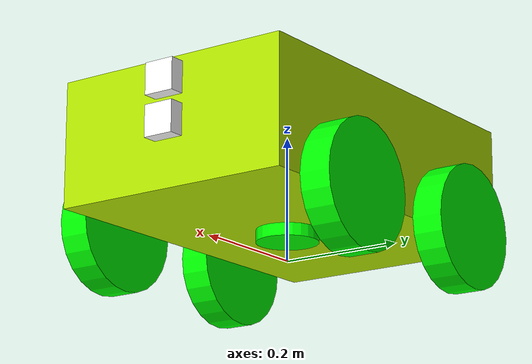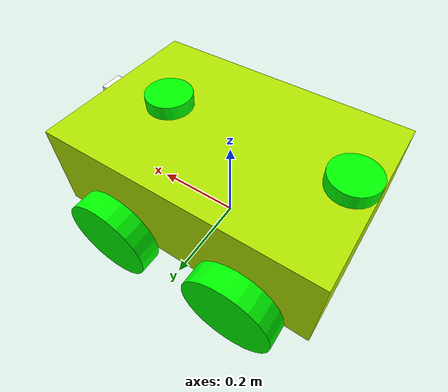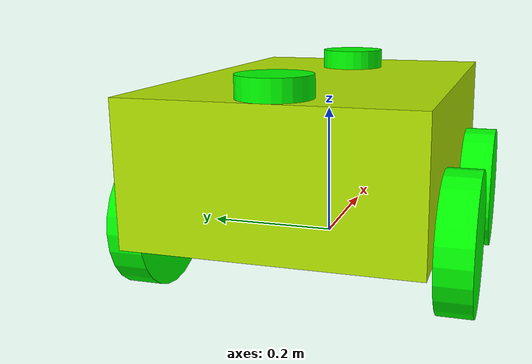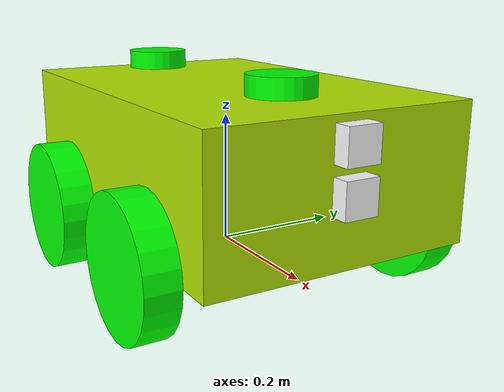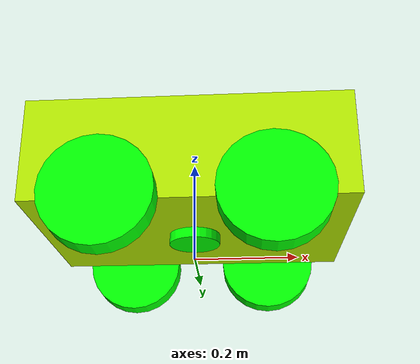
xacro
<?xml version = "1.0"?>
<robot xmlns:xacro="http://www.ros.org/wiki.xacro" name = "robot" >

<xacro:include filename="inertial.xacro"/>
<xacro:include filename="lidar.xacro"/>
<xacro:include filename="stereo.xacro"/>
<xacro:include filename="gps.xacro"/>
<xacro:include filename="imu.xacro"/>
<xacro:include filename="cam.xacro"/>

<xacro:property name="wheel_radius" value="0.1"/>
<xacro:property name="wheel_length" value="0.05"/>
<xacro:property name="wheel_mass" value="0.5"/>
<xacro:property name="damping" value="0.1"/>
<xacro:property name="friction" value="0.5"/>

    <material name = "grey">
        <color rgba = "0.7 0.7 0.7 1" />
    </material>

    <material name = "green">
        <color rgba = "0 0.6 0 1" />
    </material>

    <material name = "white">
        <color rgba = "1 1 1 1" />
    </material>

    <material name = "black">
        <color rgba = "0 0 0 1" />
    </material>

    <material name = "yellow">
        <color rgba = "0.7 0.9 0 1" />
    </material>
    <!-- Define base_footprint -->
    <link name="base_footprint">
        <inertial>
            <mass value="0.0"/>
            <origin xyz="0 0 0" rpy="0 0 0"/>
            <inertia ixx="0" ixy="0" ixz="0" iyy="0" iyz="0" izz="0"/>
        </inertial>
    </link>

    <link name = "base_link">
        <visual>
            <geometry>
                <box size = "0.6 0.4 0.2" />
            </geometry>
            <origin xyz = "0 0 0.1" rpy = "0 0 0" />
            <material name = "yellow" />
        </visual>

        <collision>
            <geometry>
                <box size = "0.6 0.4 0.2" />
            </geometry>
            <origin xyz = "0 0 0.1" rpy = "0 0 0" />
        </collision>

        <xacro:inertial_box mass="10" x="0.6" y="0.4" z="0.2">
            <origin xyz="0 0 0.1" rpy="0 0 0"/>
        </xacro:inertial_box>
    </link>
    <!-- Fixed joint to attach base_footprint to base_link -->
    <joint name="base_link_to_base_footprint" type="fixed">
        <parent link="base_footprint"/>
        <child link="base_link"/>
        <origin xyz="0 0 0.05" rpy="0 0 0"/>
    </joint>

    <gazebo reference="base_link">
        <material>Gazebo/Red</material>
    </gazebo>

    <link name="left_wheel_back_link">
        <visual>
            <geometry>
                <cylinder radius="0.1" length="0.05" />
            </geometry>

            <origin xyz="0 0 0" rpy="1.57 0 0"/>
            <material name = "black" />
        </visual>

        <collision>
            <geometry>
                <cylinder radius="0.1" length="0.05" />
            </geometry>

            <origin xyz="0 0 0" rpy="1.57 0 0"/>
        </collision>

        <xacro:inertial_cylinder mass="10" length="0.05" radius="0.1">
            <origin xyz="0 0 0" rpy="1.57 0 0"/>
        </xacro:inertial_cylinder>
    </link>

    <gazebo reference="left_wheel_back_link">
        <material>Gazebo/Black</material>
    </gazebo>

    <joint name="base_left_wheel_back_joint" type="continuous">
        <parent link="base_link" />
        <child link="left_wheel_back_link" />
        <origin xyz="-0.15 0.225 0" rpy="0 0 0"/>
        <axis xyz="0 1 0" />
        <dynamics damping="0.1" friction="0.5"/>
    </joint>

    <link name="right_wheel_back_link">
        <visual>
            <geometry>
                <cylinder radius="0.1" length="0.05" />
            </geometry>

            <origin xyz="0 0 0" rpy="-1.57 0 0"/>
            <material name = "black" />
        </visual>

        <collision>
            <geometry>
                <cylinder radius="0.1" length="0.05" />
            </geometry>

            <origin xyz="0 0 0" rpy="-1.57 0 0"/>
        </collision>

        <xacro:inertial_cylinder mass="10" length="0.05" radius="0.1">
            <origin xyz="0 0 0" rpy="-1.57 0 0"/>
        </xacro:inertial_cylinder>
    </link>

    <gazebo reference="right_wheel_back_link">
        <material>Gazebo/Black</material>
    </gazebo>

    <joint name="base_right_wheel_back_joint" type="continuous">
        <parent link="base_link" />
        <child link="right_wheel_back_link" />
        <origin xyz="-0.15 -0.225 0" rpy="0 0 0"/>
        <axis xyz="0 1 0" />
        <dynamics damping="0.1" friction="0.5"/>
    </joint>

     <link name="left_wheel_front_link">
        <visual>
            <geometry>
                <cylinder radius="0.1" length="0.05" />
            </geometry>

            <origin xyz="0 0 0" rpy="1.57 0 0"/>
            <material name = "black" />
        </visual>

        <collision>
            <geometry>
                <cylinder radius="0.1" length="0.05" />
            </geometry>

            <origin xyz="0 0 0" rpy="1.57 0 0"/>
        </collision>

        <xacro:inertial_cylinder mass="10" length="0.05" radius="0.1">
            <origin xyz="0 0 0" rpy="1.57 0 0"/>
        </xacro:inertial_cylinder>
    </link>

    <gazebo reference="left_wheel_front_link">
        <material>Gazebo/Black</material>
    </gazebo>

    <joint name="base_left_wheel_front_joint" type="continuous">
        <parent link="base_link" />
        <child link="left_wheel_front_link" />
        <origin xyz="0.15 0.225 0" rpy="0 0 0"/>
        <axis xyz="0 1 0" />
        <dynamics damping="0.1" friction="0.5"/>
    </joint>

    <link name="right_wheel_front_link">
        <visual>
            <geometry>
                <cylinder radius="0.1" length="0.05" />
            </geometry>

            <origin xyz="0 0 0" rpy="-1.57 0 0"/>
            <material name = "black" />
        </visual>

        <collision>
            <geometry>
                <cylinder radius="0.1" length="0.05" />
            </geometry>

            <origin xyz="0 0 0" rpy="-1.57 0 0"/>
        </collision>

        <xacro:inertial_cylinder mass="10" length="0.05" radius="0.1">
            <origin xyz="0 0 0" rpy="-1.57 0 0"/>
        </xacro:inertial_cylinder>
    </link>

    <gazebo reference="left_wheel_front_link">
        <material>Gazebo/Black</material>
    </gazebo>

    <joint name="base_right_wheel_front_joint" type="continuous">
        <parent link="base_link" />
        <child link="right_wheel_front_link" />
        <origin xyz="0.15 -0.225 0" rpy="0 0 0"/>
        <axis xyz="0 1 0" />
        <dynamics damping="0.1" friction="0.5"/>
    </joint>

     <gazebo>
        <plugin name='diff_drive' filename='libgazebo_ros_diff_drive.so'>
            <num_wheel_pairs>2</num_wheel_pairs>

            <!-- wheels -->
            <left_joint>base_left_wheel_front_joint</left_joint>

            <right_joint>base_right_wheel_front_joint</right_joint>

           <left_joint>base_left_wheel_back_joint</left_joint>

            <right_joint>base_right_wheel_back_joint</right_joint>

            <!-- kinematics -->
            <wheel_separation>0.45</wheel_separation>
            <wheel_diameter>0.2</wheel_diameter>

            <wheel_separation>0.45</wheel_separation>
            <wheel_diameter>0.2</wheel_diameter>

            <!-- limits -->
            <max_wheel_torque>10</max_wheel_torque>
            <max_wheel_acceleration>1.0</max_wheel_acceleration>

            <!-- output -->
            <publish_odom>true</publish_odom>
            <publish_odom_tf>true</publish_odom_tf>
            <publish_wheel_tf>false</publish_wheel_tf>

            <odometry_frame>odom</odometry_frame>
            <robot_base_frame>base_footprint</robot_base_frame>
        </plugin>
    </gazebo>

        <gazebo>
        <plugin name="gazebo_ros_joint_state_publisher" filename="libgazebo_ros_joint_state_publisher.so">
            <update_rate>10</update_rate>
            <joint_name>base_left_wheel_front_joint</joint_name>
            <joint_name>base_left_wheel_back_joint</joint_name>
            <joint_name>base_right_wheel_front_joint</joint_name>
            <joint_name>base_right_wheel_back_joint</joint_name>

        </plugin>
    </gazebo>

</robot>

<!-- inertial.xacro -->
<robot xmlns:xacro="http://www.ros.org/wiki/xacro" >

<xacro:macro name="inertial_box" params="mass x y z *origin">
    <inertial>
        <xacro:insert_block name="origin"/>
        <mass value="${mass}" />
        <inertia ixx="${(1/12) * mass * (y*y+z*z)}" ixy="0.0" ixz="0.0"
                iyy="${(1/12) * mass * (x*x+z*z)}" iyz="0.0"
                izz="${(1/12) * mass * (x*x+y*y)}" />
    </inertial>
</xacro:macro>

<xacro:macro name="inertial_cylinder" params="mass length radius *origin">
    <inertial>
        <xacro:insert_block name="origin"/>
        <mass value="${mass}" />
        <inertia ixx="${(1/12) * mass * (3*radius*radius + length*length)}" ixy="0.0" ixz="0.0"
                iyy="${(1/12) * mass * (3*radius*radius + length*length)}" iyz="0.0"
                izz="${(1/2) * mass * (radius*radius)}" />
    </inertial>
</xacro:macro>

</robot>

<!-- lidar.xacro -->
<robot xmlns:xacro="http://www.ros.org/wiki/xacro" name="robot">

  <!-- Joint connecting the base_link to the laser_frame -->
  <joint name="laser_joint" type="fixed">
    <parent link="base_link"/>
    <child link="laser_frame"/>
    <origin xyz="0.15 0 0.210" rpy="0 0 0"/>
  </joint>

  <!-- Laser frame link -->
  <link name="laser_frame">
    <visual>
      <geometry>
        <cylinder radius="0.05" length="0.04"/>
      </geometry>
      <material name="green">
        <color rgba="0 1 0 1"/>
      </material>
    </visual>
    <collision>
      <geometry>
        <cylinder radius="0.05" length="0.04"/>
      </geometry>
    </collision>
    <!-- Use of custom xacro inertial cylinder -->
    <xacro:inertial_cylinder mass="0.1" length="0.04" radius="0.05">
      <origin xyz="0 0 0" rpy="0 0 0"/>
    </xacro:inertial_cylinder>
  </link>

  <!-- Gazebo-specific plugin for the laser sensor -->
  <gazebo reference="laser_frame">
    <sensor name="lidar" type="ray">
    <pose>0.215 0 0.215 0 0 0</pose>
    <always_on>true</always_on>
    <visualize>true</visualize>
    <update_rate>5</update_rate>
    <ray>
      <scan>
        <horizontal>
          <samples>360</samples>
          <resolution>1.00000</resolution>
          <min_angle>0.000000</min_angle>
          <max_angle>6.280000</max_angle>
        </horizontal>
      </scan>
      <range>
        <min>0.120000</min>
        <max>3.5</max>
        <resolution>0.015000</resolution>
      </range>
      <noise>
        <type>gaussian</type>
        <mean>0.0</mean>
        <stddev>0.01</stddev>
      </noise>
    </ray>
    <plugin name="scan" filename="libgazebo_ros_ray_sensor.so">
      <ros>
        <remapping>~/out:=scan</remapping>
      </ros>
      <output_type>sensor_msgs/LaserScan</output_type>
      <frame_name>laser_frame</frame_name>
    </plugin>
  </sensor>
  </gazebo>

</robot>

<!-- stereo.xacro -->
<robot xmlns:xacro="http://www.ros.org/wiki/xacro" >

    <joint name="stereo" type="fixed">
        <parent link="base_link"/>
        <child link="stereo_link"/>
        <origin xyz="0.3 0 0.165" rpy="0 0 0"/>
    </joint>

    <link name="stereo_link">
        <visual>
            <geometry>
            <box size="0.05 0.05 0.05"/>
            </geometry>
            <material name="white"/>
        </visual>

        <xacro:inertial_box mass="0.02" x="0.05" y="0.05" z="0.05">
            <origin xyz="0.3 0 0.165" rpy="0 0 0"/>
        </xacro:inertial_box>
    </link>

           <gazebo reference="stereo_link">
    <sensor name="camera" type="depth">
        <always_on>true</always_on>
        <update_rate>15</update_rate>
        <visualize>true</visualize>
        <pose>0 0 0 0 0 0</pose>
        <camera name="realsense_depth_camera">
            <horizontal_fov>1.46608</horizontal_fov>
            <image>
                <width>424</width>
                <height>240</height>
                <format>B8G8R8</format>
            </image>
            <clip>
                <near>0.05</near>
                <far>8</far>
            </clip>
        </camera>
        <!-- https://github.com/mlherd/ros2_turtlebot3_waffle_intel_realsense -->
        <plugin name="intel_realsense_d430_depth_driver" filename="libgazebo_ros_camera.so">
            <ros>
                <namespace>d430</namespace>
                <remapping>camera/image_raw:=color/image_raw</remapping>
                <remapping>camera/depth/image_raw:=depth/image_rect_raw</remapping>
                <remapping>camera/camera_info:=camera_info</remapping>
                <remapping>camera/depth/camera_info:=depth/camera_info</remapping>
                <remapping>camera/points:=depth/points</remapping>
            </ros>
            <camera_name>camera</camera_name>
            <frame_name>stereo_link</frame_name>
            <hack_baseline>0.07</hack_baseline>
            <min_depth>0.05</min_depth>
            <max_depth>8.0</max_depth>
        </plugin>
    </sensor>
</gazebo>

</robot>

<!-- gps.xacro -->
<robot xmlns:xacro="http://www.ros.org/wiki/xacro" name="robot">

  <joint name="gps_joint" type="fixed">
    <parent link="base_link"/>
    <child link="gps_link"/>
    <origin xyz="-0.25 0 0.210" rpy="0 0 0"/>
  </joint>

  <link name="gps_link">
    <visual>
      <geometry>
        <cylinder radius="0.05" length="0.04"/>
      </geometry>
      <material name="black">
        <color rgba="0 1 0 1"/>
      </material>
    </visual>
    <collision>
      <geometry>
        <cylinder radius="0.05" length="0.04"/>
      </geometry>
    </collision>

    <xacro:inertial_cylinder mass="0.1" length="0.04" radius="0.05">
      <origin xyz="0 0 0" rpy="0 0 0"/>
    </xacro:inertial_cylinder>
  </link>

  <gazebo reference="gps_link">
    <sensor name="gps_sensor" type="gps">
        <always_on>true</always_on>
        <update_rate>10.0</update_rate>
        <plugin name="gps_controller" filename="libgazebo_ros_gps_sensor.so">
            <ros>
                <remapping>gps_controller/out:=gps</remapping>
            </ros>
            <frame_name>gps_link</frame_name>
            <horizontal_position_std_dev>0.0</horizontal_position_std_dev>
            <vertical_position_std_dev>0.0</vertical_position_std_dev>

        </plugin>
    </sensor>
    <material>Gazebo/Grey</material>
  </gazebo>

  </robot>

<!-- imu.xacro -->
<robot xmlns:xacro="http://www.ros.org/wiki/xacro">

  <!-- Joint connecting the base_link to the imu_link -->
  <joint name="imu_joint" type="fixed">
    <parent link="base_link"/>
    <child link="imu_link"/>
    <origin xyz="0 0 0" rpy="0 0 0"/>
  </joint>

  <!-- IMU Link -->
  <link name="imu_link">
    <visual>
      <geometry>
        <cylinder radius="0.05" length="0.04"/>
      </geometry>
      <material name="black">
        <color rgba="0 1 0 1"/>
      </material>
    </visual>
    <collision>
      <geometry>
        <cylinder radius="0.05" length="0.04"/>
      </geometry>
    </collision>
    <!-- Custom xacro inertial block -->
    <xacro:inertial_cylinder mass="0.1" length="0.04" radius="0.05">
      <origin xyz="0 0 0" rpy="0 0 0"/>
    </xacro:inertial_cylinder>
  </link>

  <!-- Gazebo-specific plugin for the IMU sensor -->
  <gazebo reference="imu_link">
    <sensor name="imu_sensor" type="imu">
      <always_on>true</always_on>
      <update_rate>10.0</update_rate>
      <plugin name="imu_controller" filename="libgazebo_ros_imu_sensor.so">
        <ros>
          <remapping>imu_controller/out:=imu</remapping>
        </ros>
        <frame_name>imu_link</frame_name>
      </plugin>
    </sensor>
    <material>Gazebo/Grey</material>
  </gazebo>

</robot>

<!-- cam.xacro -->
<robot xmlns:xacro="http://www.ros.org/wiki/xacro" >

    <joint name="camera_joint" type="fixed">
        <parent link="base_link"/>
        <child link="camera_link"/>
        <origin xyz="0.3 0 0.1" rpy="0 0 0"/>
    </joint>

    <link name="camera_link">
        <visual>
            <geometry>
            <box size="0.05 0.05 0.05"/>
            </geometry>
            <material name="white"/>
        </visual>

         <gazebo reference="camera_link">
        <sensor type="camera" name="my_camera">
            <update_rate>20</update_rate>
            <visualize>true</visualize>
            <camera name="cam">
                <horizontal_fov>1.3962634</horizontal_fov>
                <image>
                    <width>640</width>
                    <height>480</height>
                    <format>R8B8G8</format>
                </image>
                <clip>
                    <near>0.02</near>
                    <far>1000</far>
                </clip>
                <noise>
                    <type>gaussian</type>
                    <mean>0.0</mean>
                    <stddev>0.007</stddev>
                </noise>
            </camera>
            <plugin name="camera_controller" filename="libgazebo_ros_camera.so">
                <frame_name>camera_link</frame_name>
                <min_depth>0.1</min_depth>
                <max_depth>1000</max_depth>
            </plugin>
        </sensor>
    </gazebo>

        <xacro:inertial_box mass="0.02" x="0.05" y="0.05" z="0.05">
            <origin xyz="0.3 0 0.1" rpy="0 0 0"/>
        </xacro:inertial_box>
    </link>
</robot>
